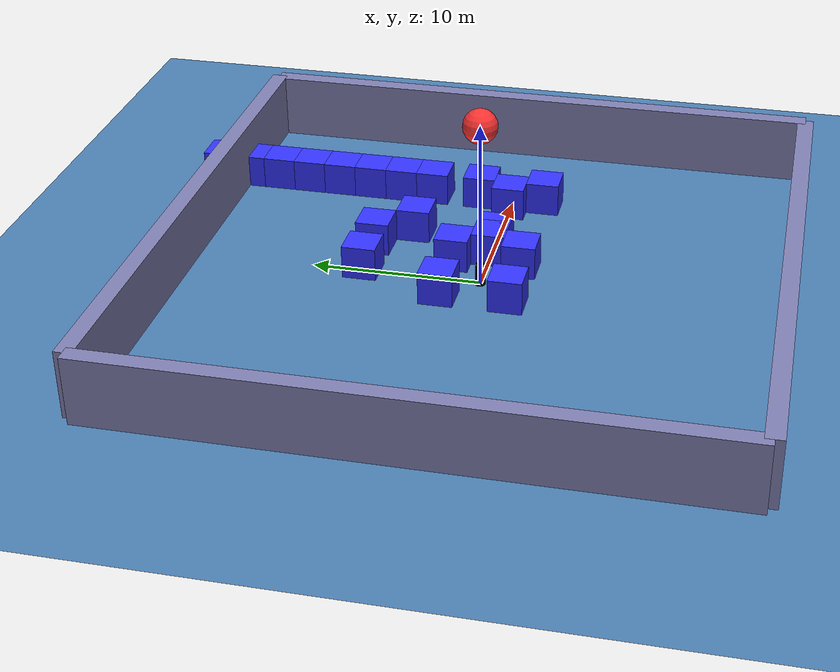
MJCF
<?xml version="1.0" encoding="UTF-8"?>
<mujoco model="chessboard_ground">
    <option gravity="0 0 -9.81" timestep="0.25" />

    <asset>
        <!-- Texture scacchiera blu chiaro e blu scuro -->
        <texture name="chessboard" type="2d" builtin="checker" rgb1="0.6 0.8 1"  rgb2="0.0 0.2 0.4"  width="100" height="100"/>
        <material name="chessboard_material" texture="chessboard" texrepeat="1 1" texuniform="true"/>
        <material name="sphere_material" rgba="1 0.2 0.2 1"/>
        <material name="cube_material" rgba="0.2 0.2 1 1"/>
        <material name="agent_material" rgba="0 0 0 1"/>
        <material name="wall_material" rgba="0.5 0.5 0.7 1"/>
        <material name="arrow_material" rgba="0 1 0 1"/>

        <mesh name="cylinder_robot" file="cylinder_robot.stl"/>
    </asset>

    <worldbody>
        <geom name="ground" type="plane" size="50 50 0.1" pos="0 0 0" material="chessboard_material"/>

        <light name="light1" pos="0 0 500" dir="0 0 -1" diffuse="0.8 0.8 0.8" specular="0.1 0.1 0.1" castshadow="true"/>

        <body name="cube_body" pos="0 0 0.5">
            <geom name="cube" type="cylinder" size="0.32 0.8" mass="1.0" material="agent_material" contype="0" conaffinity="0"/>
            <joint name="slider_x" type="slide" axis="1 0 0"/>
            <joint name="slider_y" type="slide" axis="0 1 0"/>
            <joint name="hinge_z" type="hinge" axis="0 0 1"/>

        </body>

        <geom name="sphere" type="sphere" size="1" pos="0 0 10" material="sphere_material"/>
        <geom name="wall_north" type="box" size="17.5 0.5 2" pos="0 17.5 2" material="wall_material"/>
        <geom name="wall_south" type="box" size="17.5 0.5 2" pos="0 -17.5 2" material="wall_material"/>
        <geom name="wall_east" type="box" size="0.5 17.5 2" pos="17.5 0 2" material="wall_material"/>
        <geom name="wall_west" type="box" size="0.5 17.5 2" pos="-17.5 0 2" material="wall_material"/>
        <body name="obstacle1" pos="2 2 1">
            <geom name="obstacle1" type="box" size="1 1 1" mass="1.0" material="cube_material" contype="1" conaffinity="1"/>
        </body>

        <body name="obstacle2" pos="-2 2 1">
            <geom name="obstacle2" type="box" size="1 1 1" mass="1.0" material="cube_material" contype="1" conaffinity="1"/>
        </body>

        <body name="obstacle3" pos="2 -2 1">
            <geom name="obstacle3" type="box" size="1 1 1" mass="1.0" material="cube_material" contype="1" conaffinity="1"/>
        </body>

        <body name="obstacle4" pos="-2 -2 1">
            <geom name="obstacle4" type="box" size="1 1 1" mass="1.0" material="cube_material" contype="1" conaffinity="1"/>
        </body>

        <body name="obstacle5" pos="3 0 1">
            <geom name="obstacle5" type="box" size="1 1 1" mass="1.0" material="cube_material" contype="1" conaffinity="1"/>
        </body>

        <body name="obstacle6" pos="4 0 1">
            <geom name="obstacle6" type="box" size="1 1 1" mass="1.0" material="cube_material" contype="1" conaffinity="1"/>
        </body>

        <body name="obstacle7" pos="5 5 1">
            <geom name="obstacle7" type="box" size="1 1 1" mass="1.0" material="cube_material" contype="1" conaffinity="1"/>
        </body>

        <body name="obstacle8" pos="3 7 1">
            <geom name="obstacle8" type="box" size="1 1 1" mass="1.0" material="cube_material" contype="1" conaffinity="1"/>
        </body>

        <body name="obstacle9" pos="0 7 1">
            <geom name="obstacle9" type="box" size="1 1 1" mass="1.0" material="cube_material" contype="1" conaffinity="1"/>
        </body>

        <body name="obstacle10" pos="9 0 1">
            <geom name="obstacle10" type="box" size="1 1 1" mass="1.0" material="cube_material" contype="1" conaffinity="1"/>
        </body>

        <body name="obstacle11" pos="10 2 1">
            <geom name="obstacle11" type="box" size="1 1 1" mass="1.0" material="cube_material" contype="1" conaffinity="1"/>
        </body>

        <body name="obstacle12" pos="10 -2 1">
            <geom name="obstacle12" type="box" size="1 1 1" mass="1.0" material="cube_material" contype="1" conaffinity="1"/>
        </body>

        <body name="obstacle13" pos="10 5 1">
            <geom name="obstacle13" type="box" size="1 1 1" mass="1.0" material="cube_material" contype="1" conaffinity="1"/>
        </body>

        <body name="obstacle14" pos="10 7 1">
            <geom name="obstacle14" type="box" size="1 1 1" mass="1.0" material="cube_material" contype="1" conaffinity="1"/>
        </body>

        <body name="obstacle15" pos="10 9 1">
            <geom name="obstacle15" type="box" size="1 1 1" mass="1.0" material="cube_material" contype="1" conaffinity="1"/>
        </body>

        <body name="obstacle16" pos="10 11 1">
            <geom name="obstacle16" type="box" size="1 1 1" mass="1.0" material="cube_material" contype="1" conaffinity="1"/>
        </body>

        <body name="obstacle17" pos="10 13 1">
            <geom name="obstacle17" type="box" size="1 1 1" mass="1.0" material="cube_material" contype="1" conaffinity="1"/>
        </body>

        <body name="obstacle18" pos="10 15 1">
            <geom name="obstacle18" type="box" size="1 1 1" mass="1.0" material="cube_material" contype="1" conaffinity="1"/>
        </body>

        <body name="obstacle19" pos="10 17 1">
            <geom name="obstacle19" type="box" size="1 1 1" mass="1.0" material="cube_material" contype="1" conaffinity="1"/>
        </body>

        <body name="obstacle20" pos="10 19 1">
            <geom name="obstacle20" type="box" size="1 1 1" mass="1.0" material="cube_material" contype="1" conaffinity="1"/>
        </body>

    </worldbody>

    <sensor>

    </sensor>

    <visual>
        <global offwidth="800" offheight="600"/>
        <quality shadowsize="2048"/>
        <headlight ambient="0.3 0.3 0.3" diffuse="0.7 0.7 0.7" specular="0.1 0.1 0.1"/>
        <map znear="0.01"/>
        <scale forcewidth="0.01" contactwidth="0.05" contactheight="0.05" jointwidth="0.05" framelength="0.2" framewidth="0.02"/>
        <rgba contactpoint="0 0.9 0 0.7" contactforce="0 0.5 0.3 0.1"/>
    </visual>
</mujoco>
